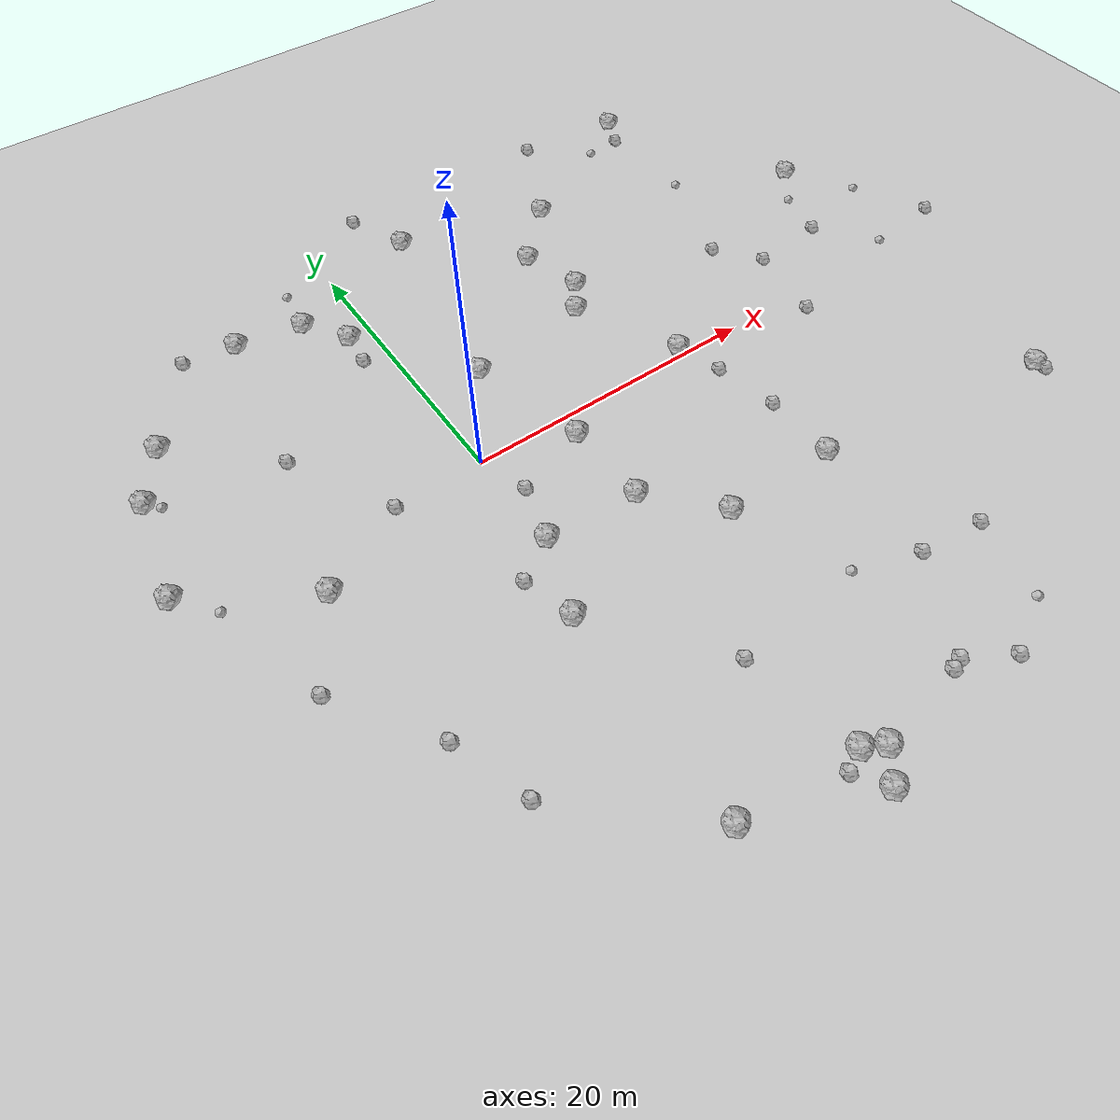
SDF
<sdf version="1.6">
 <world name="default">
  <include><uri>model://custom_ground</uri></include>
  <include><uri>model://sun</uri></include>
  <model name="rock1_0_0">
   <include><uri>model://rock1</uri><pose>-15.437369852497458 12.386234864009808 0.5 0 0 0</pose></include>
  </model>
  <model name="rock1_0_1">
   <include><uri>model://rock1</uri><pose>16.346683398591203 17.870672610466215 0.5 0 0 0</pose></include>
  </model>
  <model name="rock1_0_2">
   <include><uri>model://rock1</uri><pose>-11.588880502862276 -3.0910449689514756 0.5 0 0 0</pose></include>
  </model>
  <model name="rock1_0_3">
   <include><uri>model://rock1</uri><pose>-1.8687592295983961 -26.150660771009445 0.5 0 0 0</pose></include>
  </model>
  <model name="rock1_0_4">
   <include><uri>model://rock1</uri><pose>6.853723311361087 -27.576320307401296 0.5 0 0 0</pose></include>
  </model>
  <model name="rock1_0_5">
   <include><uri>model://rock1</uri><pose>12.591848755023996 13.928709163325067 0.5 0 0 0</pose></include>
  </model>
  <model name="rock1_0_6">
   <include><uri>model://rock1</uri><pose>-18.91758866211276 1.6774804763114375 0.5 0 0 0</pose></include>
  </model>
  <model name="rock1_0_7">
   <include><uri>model://rock1</uri><pose>6.17777752622932 -7.533626963467391 0.5 0 0 0</pose></include>
  </model>
  <model name="rock1_0_8">
   <include><uri>model://rock1</uri><pose>3.9691411782888295 6.4771196332226495 0.5 0 0 0</pose></include>
  </model>
  <model name="rock1_0_9">
   <include><uri>model://rock1</uri><pose>5.577966931976988 -26.851481594766945 0.5 0 0 0</pose></include>
  </model>
  <model name="rock1_0_10">
   <include><uri>model://rock1</uri><pose>13.810430865486133 9.690829898293778 0.5 0 0 0</pose></include>
  </model>
  <model name="rock1_0_11">
   <include><uri>model://rock1</uri><pose>-7.915619364987323 17.895076785496755 0.5 0 0 0</pose></include>
  </model>
  <model name="rock1_0_12">
   <include><uri>model://rock1</uri><pose>12.387645381192605 7.5905308463645085 0.5 0 0 0</pose></include>
  </model>
  <model name="rock1_0_13">
   <include><uri>model://rock1</uri><pose>34.286321418858364 10.711582712768404 0.5 0 0 0</pose></include>
  </model>
  <model name="rock1_0_14">
   <include><uri>model://rock1</uri><pose>-1.5863501913089735 -12.183474728801446 0.5 0 0 0</pose></include>
  </model>
  <model name="rock1_0_15">
   <include><uri>model://rock1</uri><pose>5.501985316491126 -29.289142118044026 0.5 0 0 0</pose></include>
  </model>
  <model name="rock1_0_16">
   <include><uri>model://rock1</uri><pose>6.001349973866429 -1.6841760647964819 0.5 0 0 0</pose></include>
  </model>
  <model name="rock1_0_17">
   <include><uri>model://rock1</uri><pose>33.7550567025856 -14.265820927350513 0.5 0 0 0</pose></include>
  </model>
  <model name="rock1_0_18">
   <include><uri>model://rock1</uri><pose>17.534963929825118 -11.807966904840299 0.5 0 0 0</pose></include>
  </model>
  <model name="rock1_0_19">
   <include><uri>model://rock1</uri><pose>-3.472403921948249 17.10496111206392 0.5 0 0 0</pose></include>
  </model>
  <model name="rock1_0_20">
   <include><uri>model://rock1</uri><pose>-1.4981211520475455 14.15704872300909 0.5 0 0 0</pose></include>
  </model>
  <model name="rock1_0_21">
   <include><uri>model://rock1</uri><pose>15.745309516618335 0.5402535307308831 0.5 0 0 0</pose></include>
  </model>
  <model name="rock1_0_22">
   <include><uri>model://rock1</uri><pose>-17.681078696928928 8.776866712733494 0.5 0 0 0</pose></include>
  </model>
  <model name="rock1_0_23">
   <include><uri>model://rock1</uri><pose>27.055131388397008 24.035237937603156 0.5 0 0 0</pose></include>
  </model>
  <model name="rock1_0_24">
   <include><uri>model://rock1</uri><pose>9.941409406286073 -11.785064062951097 0.5 0 0 0</pose></include>
  </model>
  <model name="rock1_0_25">
   <include><uri>model://rock1</uri><pose>0.13262440660681918 -7.096585495663604 0.5 0 0 0</pose></include>
  </model>
  <model name="rock1_0_26">
   <include><uri>model://rock1</uri><pose>6.09594022879655 20.7129079406115 0.5 0 0 0</pose></include>
  </model>
  <model name="rock2_0_0">
   <include><uri>model://rock2</uri><pose>33.86038891985302 -14.997258382917762 0.3 0 0 0</pose></include>
  </model>
  <model name="rock2_0_1">
   <include><uri>model://rock2</uri><pose>39.76981902202666 1.2619217833362946 0.3 0 0 0</pose></include>
  </model>
  <model name="rock2_0_2">
   <include><uri>model://rock2</uri><pose>1.0355254836381569 -3.318724499622636 0.3 0 0 0</pose></include>
  </model>
  <model name="rock2_0_3">
   <include><uri>model://rock2</uri><pose>4.29521033549948 24.985952134155518 0.3 0 0 0</pose></include>
  </model>
  <model name="rock2_0_4">
   <include><uri>model://rock2</uri><pose>-5.898405011449006 -0.002287994042713848 0.3 0 0 0</pose></include>
  </model>
  <model name="rock2_0_5">
   <include><uri>model://rock2</uri><pose>-2.592822763080985 -8.752606754663866 0.3 0 0 0</pose></include>
  </model>
  <model name="rock2_0_6">
   <include><uri>model://rock2</uri><pose>-1.7767961662466654 11.817638523527236 0.3 0 0 0</pose></include>
  </model>
  <model name="rock2_0_7">
   <include><uri>model://rock2</uri><pose>4.235853930808172 -27.460428842326678 0.3 0 0 0</pose></include>
  </model>
  <model name="rock2_0_8">
   <include><uri>model://rock2</uri><pose>-10.786654263721463 -14.513573143503319 0.3 0 0 0</pose></include>
  </model>
  <model name="rock2_0_9">
   <include><uri>model://rock2</uri><pose>-11.48863260430354 18.511017667591553 0.3 0 0 0</pose></include>
  </model>
  <model name="rock2_0_10">
   <include><uri>model://rock2</uri><pose>21.0398480024421 -20.929455640365177 0.3 0 0 0</pose></include>
  </model>
  <model name="rock2_0_11">
   <include><uri>model://rock2</uri><pose>-14.852711219410786 -8.409222295714997 0.3 0 0 0</pose></include>
  </model>
  <model name="rock2_0_12">
   <include><uri>model://rock2</uri><pose>16.61053217602899 -2.5423323724041254 0.3 0 0 0</pose></include>
  </model>
  <model name="rock2_0_13">
   <include><uri>model://rock2</uri><pose>26.0261786458817 21.873842161557583 0.3 0 0 0</pose></include>
  </model>
  <model name="rock2_0_14">
   <include><uri>model://rock2</uri><pose>19.66475012049596 24.9566631768283 0.3 0 0 0</pose></include>
  </model>
  <model name="rock2_0_15">
   <include><uri>model://rock2</uri><pose>16.775561208152126 -20.40609098223485 0.3 0 0 0</pose></include>
  </model>
  <model name="rock2_0_16">
   <include><uri>model://rock2</uri><pose>17.44308238689299 -6.86961148934158 0.3 0 0 0</pose></include>
  </model>
  <model name="rock2_0_17">
   <include><uri>model://rock2</uri><pose>12.643805273592804 -26.582426778336288 0.3 0 0 0</pose></include>
  </model>
  <model name="rock2_0_18">
   <include><uri>model://rock2</uri><pose>-9.124090197969526 -19.41482191278055 0.3 0 0 0</pose></include>
  </model>
  <model name="rock2_0_19">
   <include><uri>model://rock2</uri><pose>4.188567504249082 -19.64686896306466 0.3 0 0 0</pose></include>
  </model>
  <model name="rock2_0_20">
   <include><uri>model://rock2</uri><pose>25.215143867545635 -1.5376624617403074 0.3 0 0 0</pose></include>
  </model>
  <model name="rock2_0_21">
   <include><uri>model://rock2</uri><pose>16.13814451169742 -28.026202103386098 0.3 0 0 0</pose></include>
  </model>
  <model name="rock2_0_22">
   <include><uri>model://rock2</uri><pose>31.35502036646443 4.566418338676087 0.3 0 0 0</pose></include>
  </model>
  <model name="rock2_0_23">
   <include><uri>model://rock2</uri><pose>-9.550909395051354 6.8644784418069875 0.3 0 0 0</pose></include>
  </model>
  <model name="rock2_0_24">
   <include><uri>model://rock2</uri><pose>23.841600351412268 6.97377897300489 0.3 0 0 0</pose></include>
  </model>
  <model name="rock2_0_25">
   <include><uri>model://rock2</uri><pose>13.407510124951202 -26.325465457828557 0.3 0 0 0</pose></include>
  </model>
  <model name="rock2_0_26">
   <include><uri>model://rock2</uri><pose>26.11600524511583 4.017645843066262 0.3 0 0 0</pose></include>
  </model>
  <model name="rock3_0_0">
   <include><uri>model://rock3</uri><pose>19.770423449205097 -26.220572813588365 0.2 0 0 0</pose></include>
  </model>
  <model name="rock3_0_1">
   <include><uri>model://rock3</uri><pose>37.191596157164014 6.247432622050937 0.2 0 0 0</pose></include>
  </model>
  <model name="rock3_0_2">
   <include><uri>model://rock3</uri><pose>-16.963259126445216 8.02874845340537 0.2 0 0 0</pose></include>
  </model>
  <model name="rock3_0_3">
   <include><uri>model://rock3</uri><pose>34.432962467442024 0.6345428974181644 0.2 0 0 0</pose></include>
  </model>
  <model name="rock3_0_4">
   <include><uri>model://rock3</uri><pose>32.227619390920324 8.066623198771943 0.2 0 0 0</pose></include>
  </model>
  <model name="rock3_0_5">
   <include><uri>model://rock3</uri><pose>-3.1688808023209205 20.376739547925254 0.2 0 0 0</pose></include>
  </model>
  <model name="rock3_0_6">
   <include><uri>model://rock3</uri><pose>23.543852473276083 21.654542782254254 0.2 0 0 0</pose></include>
  </model>
  <model name="rock3_0_7">
   <include><uri>model://rock3</uri><pose>26.43916310961815 14.528446385008081 0.2 0 0 0</pose></include>
  </model>
  <model name="rock3_0_8">
   <include><uri>model://rock3</uri><pose>12.632324082615156 -18.995252025454974 0.2 0 0 0</pose></include>
  </model>
  <model name="rock3_0_9">
   <include><uri>model://rock3</uri><pose>-17.034013361459287 -0.7076718407898497 0.2 0 0 0</pose></include>
  </model>
  <model name="rock3_0_10">
   <include><uri>model://rock3</uri><pose>-11.900735438472687 -2.6033207009402908 0.2 0 0 0</pose></include>
  </model>
 </world>
</sdf>
